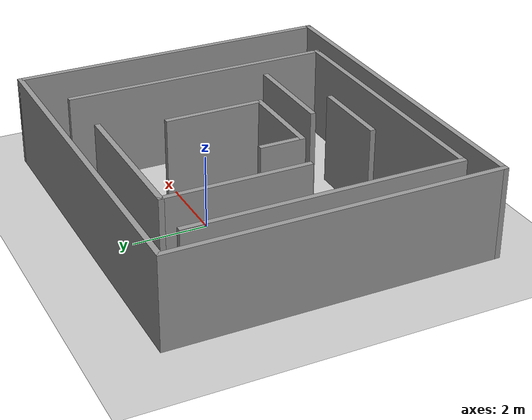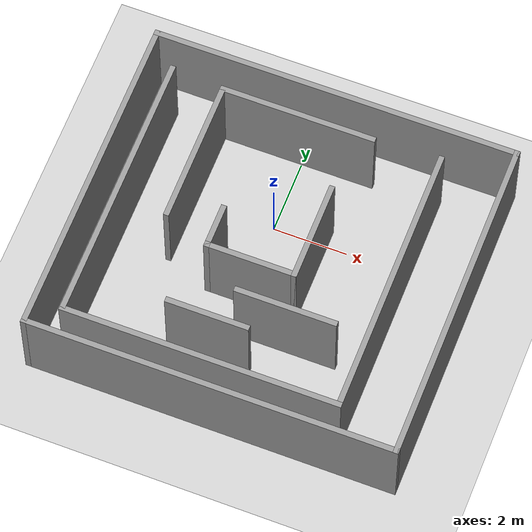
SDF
<sdf version="1.6">
 <world name="default">
  <light name="sun" type="directional">
   <pose>0 0 10 0 -0 0</pose>
   <diffuse>0.8 0.8 0.8 1</diffuse>
   <specular>0.1 0.1 0.1 1</specular>
   <attenuation>
    <range>1000</range>
    <constant>0.9</constant>
    <linear>0.01</linear>
    <quadratic>0.001</quadratic>
   </attenuation>
   <direction>-0.5 0.5 -1</direction>
  </light>
  <model name="ground_plane">
   <static>1</static>
   <link name="link">
    <collision name="collision">
     <geometry><plane><normal>0 0 1</normal><size>100 100</size></plane></geometry>
     <surface><friction><ode><mu>100</mu><mu2>50</mu2></ode></friction></surface>
    </collision>
    <visual name="visual">
     <cast_shadows>0</cast_shadows>
     <geometry><plane><normal>0 0 1</normal><size>100 100</size></plane></geometry>
     <material>
      <script><uri>file://media/materials/scripts/gazebo.material</uri><name>Gazebo/Grey</name></script>
     </material>
    </visual>
   </link>
  </model>
  <gravity>0 0 -9.8</gravity>
  <magnetic_field>6e-06 2.3e-05 -4.2e-05</magnetic_field>
  <atmosphere type="adiabatic"/>
  <physics name="default_physics" default="0" type="ode">
   <max_step_size>0.001</max_step_size>
   <real_time_factor>1</real_time_factor>
   <real_time_update_rate>1000</real_time_update_rate>
  </physics>
  <scene><ambient>0.4 0.4 0.4 1</ambient><background>0.7 0.7 0.7 1</background><shadows>1</shadows></scene>
  <spherical_coordinates>
   <surface_model>EARTH_WGS84</surface_model>
   <latitude_deg>0</latitude_deg>
   <longitude_deg>0</longitude_deg>
   <elevation>0</elevation>
   <heading_deg>0</heading_deg>
  </spherical_coordinates>
  <model name="mymap4">
   <pose>0.514323 -1.37974 0 0 -0 0</pose>
   <link name="Wall_0">
    <collision name="Wall_0_Collision">
     <geometry><box><size>2.25 0.15 2.5</size></box></geometry>
     <pose>0 0 1.25 0 -0 0</pose>
    </collision>
    <visual name="Wall_0_Visual">
     <pose>0 0 1.25 0 -0 0</pose>
     <geometry><box><size>2.25 0.15 2.5</size></box></geometry>
     <material>
      <script><uri>file://media/materials/scripts/gazebo.material</uri><name>Gazebo/Grey</name></script>
      <ambient>1 1 1 1</ambient>
     </material>
    </visual>
    <pose>-0.744323 -2.62026 0 0 -0 0</pose>
   </link>
   <link name="Wall_11">
    <collision name="Wall_11_Collision">
     <geometry><box><size>7.5 0.15 2.5</size></box></geometry>
     <pose>0 0 1.25 0 -0 0</pose>
    </collision>
    <visual name="Wall_11_Visual">
     <pose>0 0 1.25 0 -0 0</pose>
     <geometry><box><size>7.5 0.15 2.5</size></box></geometry>
     <material>
      <script><uri>file://media/materials/scripts/gazebo.material</uri><name>Gazebo/Grey</name></script>
      <ambient>1 1 1 1</ambient>
     </material>
    </visual>
    <pose>-4.16753 -0.090149 0 0 0 -1.5708</pose>
   </link>
   <link name="Wall_12">
    <collision name="Wall_12_Collision">
     <geometry><box><size>7.5 0.15 2.5</size></box></geometry>
     <pose>0 0 1.25 0 -0 0</pose>
    </collision>
    <visual name="Wall_12_Visual">
     <pose>0 0 1.25 0 -0 0</pose>
     <geometry><box><size>7.5 0.15 2.5</size></box></geometry>
     <material>
      <script><uri>file://media/materials/scripts/gazebo.material</uri><name>Gazebo/Grey</name></script>
      <ambient>1 1 1 1</ambient>
     </material>
    </visual>
    <pose>-0.492528 -3.76515 0 0 -0 0</pose>
   </link>
   <link name="Wall_13">
    <collision name="Wall_13_Collision">
     <geometry><box><size>7.5 0.15 2.5</size></box></geometry>
     <pose>0 0 1.25 0 -0 0</pose>
    </collision>
    <visual name="Wall_13_Visual">
     <pose>0 0 1.25 0 -0 0</pose>
     <geometry><box><size>7.5 0.15 2.5</size></box></geometry>
     <material>
      <script><uri>file://media/materials/scripts/gazebo.material</uri><name>Gazebo/Grey</name></script>
      <ambient>1 1 1 1</ambient>
     </material>
    </visual>
    <pose>3.18247 -0.090149 0 0 -0 1.5708</pose>
   </link>
   <link name="Wall_15">
    <collision name="Wall_15_Collision">
     <geometry><box><size>10 0.15 2.5</size></box></geometry>
     <pose>0 0 1.25 0 -0 0</pose>
    </collision>
    <visual name="Wall_15_Visual">
     <pose>0 0 1.25 0 -0 0</pose>
     <geometry><box><size>10 0.15 2.5</size></box></geometry>
     <material>
      <script><uri>file://media/materials/scripts/gazebo.material</uri><name>Gazebo/Grey</name></script>
      <ambient>1 1 1 1</ambient>
     </material>
    </visual>
    <pose>0 4.425 0 0 -0 0</pose>
   </link>
   <link name="Wall_16">
    <collision name="Wall_16_Collision">
     <geometry><box><size>9 0.15 2.5</size></box></geometry>
     <pose>0 0 1.25 0 -0 0</pose>
    </collision>
    <visual name="Wall_16_Visual">
     <pose>0 0 1.25 0 -0 0</pose>
     <geometry><box><size>9 0.15 2.5</size></box></geometry>
     <material>
      <script><uri>file://media/materials/scripts/gazebo.material</uri><name>Gazebo/Grey</name></script>
      <ambient>1 1 1 1</ambient>
     </material>
    </visual>
    <pose>4.925 0 0 0 0 -1.5708</pose>
   </link>
   <link name="Wall_17">
    <collision name="Wall_17_Collision">
     <geometry><box><size>10 0.15 2.5</size></box></geometry>
     <pose>0 0 1.25 0 -0 0</pose>
    </collision>
    <visual name="Wall_17_Visual">
     <pose>0 0 1.25 0 -0 0</pose>
     <geometry><box><size>10 0.15 2.5</size></box></geometry>
     <material>
      <script><uri>file://media/materials/scripts/gazebo.material</uri><name>Gazebo/Grey</name></script>
      <ambient>1 1 1 1</ambient>
     </material>
    </visual>
    <pose>0 -4.425 0 0 -0 3.14159</pose>
   </link>
   <link name="Wall_18">
    <collision name="Wall_18_Collision">
     <geometry><box><size>9 0.15 2.5</size></box></geometry>
     <pose>0 0 1.25 0 -0 0</pose>
    </collision>
    <visual name="Wall_18_Visual">
     <pose>0 0 1.25 0 -0 0</pose>
     <geometry><box><size>9 0.15 2.5</size></box></geometry>
     <material>
      <script><uri>file://media/materials/scripts/gazebo.material</uri><name>Gazebo/Grey</name></script>
      <ambient>1 1 1 1</ambient>
     </material>
    </visual>
    <pose>-4.925 0 0 0 -0 1.5708</pose>
   </link>
   <link name="Wall_20">
    <collision name="Wall_20_Collision">
     <geometry><box><size>2.75 0.15 2.5</size></box></geometry>
     <pose>0 0 1.25 0 -0 0</pose>
    </collision>
    <visual name="Wall_20_Visual">
     <pose>0 0 1.25 0 -0 0</pose>
     <geometry><box><size>2.75 0.15 2.5</size></box></geometry>
     <material>
      <script><uri>file://media/materials/scripts/gazebo.material</uri><name>Gazebo/Grey</name></script>
      <ambient>1 1 1 1</ambient>
     </material>
    </visual>
    <pose>1.00112 -1.72975 0 0 -0 0</pose>
   </link>
   <link name="Wall_3">
    <collision name="Wall_3_Collision">
     <geometry><box><size>1.25 0.15 2.5</size></box></geometry>
     <pose>0 0 1.25 0 -0 0</pose>
    </collision>
    <visual name="Wall_3_Visual">
     <pose>0 0 1.25 0 -0 0</pose>
     <geometry><box><size>1.25 0.15 2.5</size></box></geometry>
     <material>
      <script><uri>file://media/materials/scripts/gazebo.material</uri><name>Gazebo/Grey</name></script>
      <ambient>1 1 1 1</ambient>
     </material>
    </visual>
    <pose>-1.4631 -0.26836 0 0 0 -1.5708</pose>
   </link>
   <link name="Wall_4">
    <collision name="Wall_4_Collision">
     <geometry><box><size>2.5 0.15 2.5</size></box></geometry>
     <pose>0 0 1.25 0 -0 0</pose>
    </collision>
    <visual name="Wall_4_Visual">
     <pose>0 0 1.25 0 -0 0</pose>
     <geometry><box><size>2.5 0.15 2.5</size></box></geometry>
     <material>
      <script><uri>file://media/materials/scripts/gazebo.material</uri><name>Gazebo/Grey</name></script>
      <ambient>1 1 1 1</ambient>
     </material>
    </visual>
    <pose>-0.288098 -0.81836 0 0 -0 0</pose>
   </link>
   <link name="Wall_5">
    <collision name="Wall_5_Collision">
     <geometry><box><size>2.75 0.15 2.5</size></box></geometry>
     <pose>0 0 1.25 0 -0 0</pose>
    </collision>
    <visual name="Wall_5_Visual">
     <pose>0 0 1.25 0 -0 0</pose>
     <geometry><box><size>2.75 0.15 2.5</size></box></geometry>
     <material>
      <script><uri>file://media/materials/scripts/gazebo.material</uri><name>Gazebo/Grey</name></script>
      <ambient>1 1 1 1</ambient>
     </material>
    </visual>
    <pose>0.886901 0.48164 0 0 -0 1.5708</pose>
   </link>
   <link name="Wall_8">
    <collision name="Wall_8_Collision">
     <geometry><box><size>4.25 0.15 2.5</size></box></geometry>
     <pose>0 0 1.25 0 -0 0</pose>
    </collision>
    <visual name="Wall_8_Visual">
     <pose>0 0 1.25 0 -0 0</pose>
     <geometry><box><size>4.25 0.15 2.5</size></box></geometry>
     <material>
      <script><uri>file://media/materials/scripts/gazebo.material</uri><name>Gazebo/Grey</name></script>
      <ambient>1 1 1 1</ambient>
     </material>
    </visual>
    <pose>-0.681543 3.4936 0 0 -0 3.14159</pose>
   </link>
   <link name="Wall_9">
    <collision name="Wall_9_Collision">
     <geometry><box><size>4 0.15 2.5</size></box></geometry>
     <pose>0 0 1.25 0 -0 0</pose>
    </collision>
    <visual name="Wall_9_Visual">
     <pose>0 0 1.25 0 -0 0</pose>
     <geometry><box><size>4 0.15 2.5</size></box></geometry>
     <material>
      <script><uri>file://media/materials/scripts/gazebo.material</uri><name>Gazebo/Grey</name></script>
      <ambient>1 1 1 1</ambient>
     </material>
    </visual>
    <pose>-2.73154 1.5686 0 0 0 -1.5708</pose>
   </link>
   <static>1</static>
  </model>
 </world>
</sdf>
